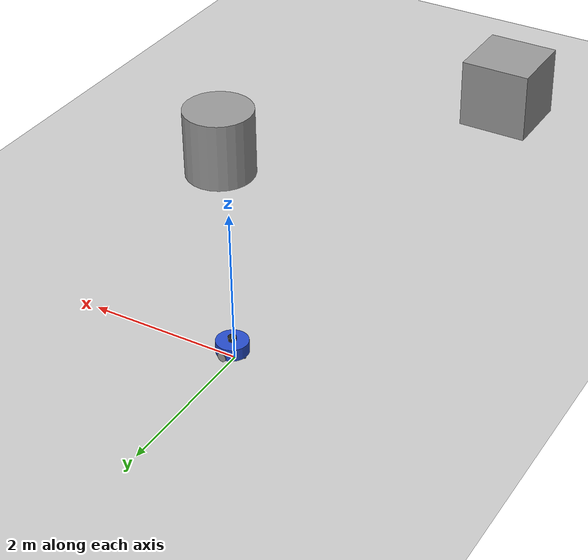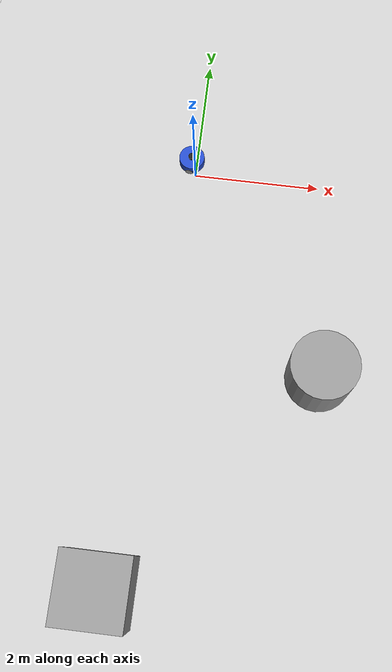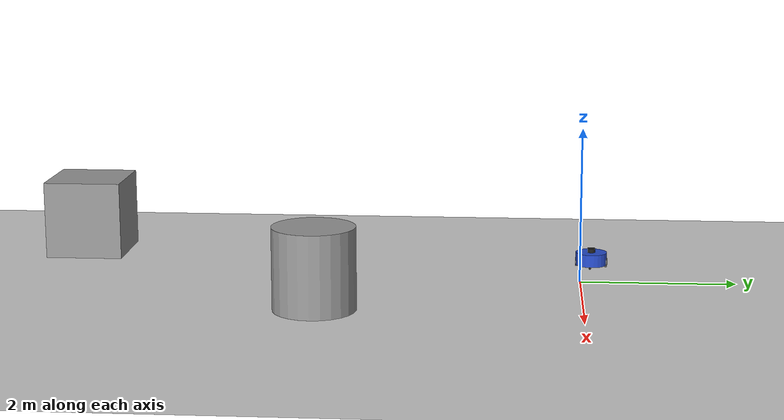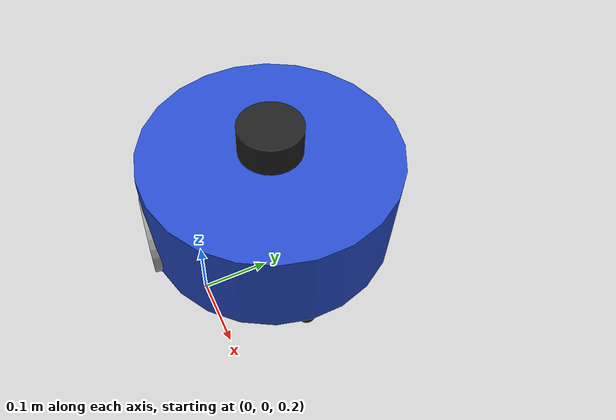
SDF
<sdf version="1.6">
 <world name="default">
  <light name="sun" type="directional">
   <pose>0 0 10 0 -0 0</pose>
   <diffuse>0.8 0.8 0.8 1</diffuse>
   <specular>0.1 0.1 0.1 1</specular>
   <attenuation>
    <range>1000</range>
    <constant>0.9</constant>
    <linear>0.01</linear>
    <quadratic>0.001</quadratic>
   </attenuation>
   <direction>-0.5 0.5 -1</direction>
  </light>
  <model name="ground_plane">
   <static>1</static>
   <link name="link">
    <collision name="collision">
     <geometry><plane><normal>0 0 1</normal><size>100 100</size></plane></geometry>
     <surface><friction><ode><mu>100</mu><mu2>50</mu2></ode></friction></surface>
    </collision>
    <visual name="visual">
     <cast_shadows>0</cast_shadows>
     <geometry><plane><normal>0 0 1</normal><size>100 100</size></plane></geometry>
     <material>
      <script><uri>file://media/materials/scripts/gazebo.material</uri><name>Gazebo/Grey</name></script>
     </material>
    </visual>
   </link>
  </model>
  <gravity>0 0 -9.8</gravity>
  <magnetic_field>6e-06 2.3e-05 -4.2e-05</magnetic_field>
  <atmosphere type="adiabatic"/>
  <physics name="default_physics" default="0" type="ode">
   <max_step_size>0.001</max_step_size>
   <real_time_factor>1</real_time_factor>
   <real_time_update_rate>1000</real_time_update_rate>
  </physics>
  <scene><ambient>0.4 0.4 0.4 1</ambient><background>0.7 0.7 0.7 1</background><shadows>1</shadows></scene>
  <spherical_coordinates>
   <surface_model>EARTH_WGS84</surface_model>
   <latitude_deg>0</latitude_deg>
   <longitude_deg>0</longitude_deg>
   <elevation>0</elevation>
   <heading_deg>0</heading_deg>
  </spherical_coordinates>
  <model name="mbot">
   <link name="base_footprint">
    <inertial>
     <pose>0 0 0.110522 0 -0 0</pose>
     <mass>20.1</mass>
     <inertia><ixx>0.253764</ixx><ixy>0</ixy><ixz>0</ixz><iyy>0.253764</iyy><iyz>0</iyz><izz>0.41</izz></inertia>
    </inertial>
    <collision name="base_footprint_fixed_joint_lump__base_link_collision">
     <pose>0 0 0.11 0 -0 0</pose>
     <geometry><cylinder><length>0.16</length><radius>0.2</radius></cylinder></geometry>
    </collision>
    <collision name="base_footprint_fixed_joint_lump__laser_link_collision_1">
     <pose>0 0 0.215 0 -0 0</pose>
     <geometry><cylinder><length>0.06</length><radius>0.05</radius></cylinder></geometry>
    </collision>
    <visual name="base_footprint_visual">
     <geometry><box><size>0.001 0.001 0.001</size></box></geometry>
     <material><script><uri>__default__</uri><name>__default__</name></script></material>
    </visual>
    <visual name="base_footprint_fixed_joint_lump__base_link_visual_1">
     <pose>0 0 0.11 0 -0 0</pose>
     <geometry><cylinder><length>0.16</length><radius>0.2</radius></cylinder></geometry>
     <material>
      <script><name>Gazebo/Blue</name><uri>file://media/materials/scripts/gazebo.material</uri></script>
     </material>
    </visual>
    <visual name="base_footprint_fixed_joint_lump__laser_link_visual_2">
     <pose>0 0 0.215 0 -0 0</pose>
     <geometry><cylinder><length>0.05</length><radius>0.05</radius></cylinder></geometry>
     <material>
      <script><name>Gazebo/Black</name><uri>file://media/materials/scripts/gazebo.material</uri></script>
     </material>
    </visual>
    <sensor name="rplidar" type="ray">
     <visualize>0</visualize>
     <update_rate>5.5</update_rate>
     <ray>
      <scan>
       <horizontal>
        <samples>360</samples>
        <resolution>1</resolution>
        <min_angle>-3</min_angle>
        <max_angle>3</max_angle>
       </horizontal>
       <vertical><samples>1</samples><min_angle>0</min_angle><max_angle>0</max_angle></vertical>
      </scan>
      <range><min>0.1</min><max>6</max><resolution>0.01</resolution></range>
      <noise><type>gaussian</type><mean>0</mean><stddev>0.01</stddev></noise>
     </ray>
     <plugin name="gazebo_rplidar" filename="libgazebo_ros_laser.so">
      <topicName>/scan</topicName>
      <frameName>laser_link</frameName>
      <robotNamespace>/</robotNamespace>
     </plugin>
     <pose>0 0 0.215 0 -0 0</pose>
    </sensor>
   </link>
   <link name="back_caster_link">
    <pose>0.18 0 0.015 0 -0 0</pose>
    <inertial>
     <mass>0.5</mass>
     <inertia><ixx>4.5e-05</ixx><ixy>0</ixy><ixz>0</ixz><iyy>4.5e-05</iyy><iyz>0</iyz><izz>4.5e-05</izz></inertia>
    </inertial>
    <collision name="back_caster_link_collision">
     <geometry><sphere><radius>0.015</radius></sphere></geometry>
    </collision>
    <visual name="back_caster_link_visual">
     <geometry><sphere><radius>0.015</radius></sphere></geometry>
     <material>
      <script><name>Gazebo/Black</name><uri>file://media/materials/scripts/gazebo.material</uri></script>
     </material>
    </visual>
   </link>
   <joint name="back_caster_joint" type="revolute">
    <child>back_caster_link</child>
    <parent>base_footprint</parent>
    <axis>
     <xyz>0 1 0</xyz>
     <limit><lower>-1e+16</lower><upper>1e+16</upper></limit>
     <dynamics><spring_reference>0</spring_reference><spring_stiffness>0</spring_stiffness></dynamics>
     <use_parent_model_frame>1</use_parent_model_frame>
    </axis>
   </joint>
   <link name="front_caster_link">
    <pose>-0.18 0 0.015 0 -0 0</pose>
    <inertial>
     <mass>0.5</mass>
     <inertia><ixx>4.5e-05</ixx><ixy>0</ixy><ixz>0</ixz><iyy>4.5e-05</iyy><iyz>0</iyz><izz>4.5e-05</izz></inertia>
    </inertial>
    <collision name="front_caster_link_collision">
     <geometry><sphere><radius>0.015</radius></sphere></geometry>
    </collision>
    <visual name="front_caster_link_visual">
     <geometry><sphere><radius>0.015</radius></sphere></geometry>
     <material>
      <script><name>Gazebo/Black</name><uri>file://media/materials/scripts/gazebo.material</uri></script>
     </material>
    </visual>
   </link>
   <joint name="front_caster_joint" type="revolute">
    <child>front_caster_link</child>
    <parent>base_footprint</parent>
    <axis>
     <xyz>0 1 0</xyz>
     <limit><lower>-1e+16</lower><upper>1e+16</upper></limit>
     <dynamics><spring_reference>0</spring_reference><spring_stiffness>0</spring_stiffness></dynamics>
     <use_parent_model_frame>1</use_parent_model_frame>
    </axis>
   </joint>
   <link name="left_wheel_link">
    <pose>0 -0.19 0.06 0 -0 0</pose>
    <inertial>
     <mass>2</mass>
     <inertia>
      <ixx>0.00190417</ixx>
      <ixy>0</ixy>
      <ixz>0</ixz>
      <iyy>0.00190417</iyy>
      <iyz>0</iyz>
      <izz>0.0036</izz>
     </inertia>
    </inertial>
    <collision name="left_wheel_link_collision">
     <pose>0 0 0 1.5708 -0 0</pose>
     <geometry><cylinder><length>0.025</length><radius>0.06</radius></cylinder></geometry>
    </collision>
    <visual name="left_wheel_link_visual">
     <pose>0 0 0 1.5708 -0 0</pose>
     <geometry><cylinder><length>0.025</length><radius>0.06</radius></cylinder></geometry>
     <material>
      <script><name>Gazebo/Gray</name><uri>file://media/materials/scripts/gazebo.material</uri></script>
     </material>
    </visual>
   </link>
   <joint name="left_wheel_joint" type="revolute">
    <child>left_wheel_link</child>
    <parent>base_footprint</parent>
    <axis>
     <xyz>0 1 0</xyz>
     <limit><lower>-1e+16</lower><upper>1e+16</upper></limit>
     <dynamics><spring_reference>0</spring_reference><spring_stiffness>0</spring_stiffness></dynamics>
     <use_parent_model_frame>1</use_parent_model_frame>
    </axis>
   </joint>
   <link name="right_wheel_link">
    <pose>0 0.19 0.06 0 -0 0</pose>
    <inertial>
     <mass>2</mass>
     <inertia>
      <ixx>0.00190417</ixx>
      <ixy>0</ixy>
      <ixz>0</ixz>
      <iyy>0.00190417</iyy>
      <iyz>0</iyz>
      <izz>0.0036</izz>
     </inertia>
    </inertial>
    <collision name="right_wheel_link_collision">
     <pose>0 0 0 1.5708 -0 0</pose>
     <geometry><cylinder><length>0.025</length><radius>0.06</radius></cylinder></geometry>
    </collision>
    <visual name="right_wheel_link_visual">
     <pose>0 0 0 1.5708 -0 0</pose>
     <geometry><cylinder><length>0.025</length><radius>0.06</radius></cylinder></geometry>
     <material>
      <script><name>Gazebo/Gray</name><uri>file://media/materials/scripts/gazebo.material</uri></script>
     </material>
    </visual>
   </link>
   <joint name="right_wheel_joint" type="revolute">
    <child>right_wheel_link</child>
    <parent>base_footprint</parent>
    <axis>
     <xyz>0 1 0</xyz>
     <limit><lower>-1e+16</lower><upper>1e+16</upper></limit>
     <dynamics><spring_reference>0</spring_reference><spring_stiffness>0</spring_stiffness></dynamics>
     <use_parent_model_frame>1</use_parent_model_frame>
    </axis>
   </joint>
   <static>0</static>
   <plugin name="differential_drive_controller" filename="libgazebo_ros_diff_drive.so">
    <rosDebugLevel>Debug</rosDebugLevel>
    <publishWheelTF>true</publishWheelTF>
    <robotNamespace>/</robotNamespace>
    <publishTf>1</publishTf>
    <publishWheelJointState>true</publishWheelJointState>
    <alwaysOn>true</alwaysOn>
    <updateRate>100.0</updateRate>
    <legacyMode>true</legacyMode>
    <leftJoint>left_wheel_joint</leftJoint>
    <rightJoint>right_wheel_joint</rightJoint>
    <wheelSeparation>0.38</wheelSeparation>
    <wheelDiameter>0.12</wheelDiameter>
    <broadcastTF>1</broadcastTF>
    <wheelTorque>30</wheelTorque>
    <wheelAcceleration>1.8</wheelAcceleration>
    <commandTopic>cmd_vel</commandTopic>
    <odometryFrame>odom</odometryFrame>
    <odometryTopic>odom</odometryTopic>
    <robotBaseFrame>base_footprint</robotBaseFrame>
   </plugin>
   <pose>-0.070305 0.141694 0.189796 2.1e-05 -0 -0.121554</pose>
  </model>
  <model name="unit_box_0">
   <pose>-0.538336 -6.52854 0.6898 0 -0 0</pose>
   <link name="link">
    <inertial>
     <mass>1</mass>
     <inertia>
      <ixx>0.166667</ixx>
      <ixy>0</ixy>
      <ixz>0</ixz>
      <iyy>0.166667</iyy>
      <iyz>0</iyz>
      <izz>0.166667</izz>
     </inertia>
    </inertial>
    <collision name="collision"><geometry><box><size>1 1 1</size></box></geometry></collision>
    <visual name="visual">
     <geometry><box><size>1 1 1</size></box></geometry>
     <material>
      <script><name>Gazebo/Grey</name><uri>file://media/materials/scripts/gazebo.material</uri></script>
     </material>
    </visual>
   </link>
  </model>
  <model name="unit_cylinder_0">
   <pose>2.2456 -3.18081 0.68979 1e-06 -0 1.2e-05</pose>
   <link name="link">
    <inertial>
     <mass>1</mass>
     <inertia><ixx>0.145833</ixx><ixy>0</ixy><ixz>0</ixz><iyy>0.145833</iyy><iyz>0</iyz><izz>0.125</izz></inertia>
    </inertial>
    <collision name="collision">
     <geometry><cylinder><radius>0.5</radius><length>1</length></cylinder></geometry>
    </collision>
    <visual name="visual">
     <geometry><cylinder><radius>0.5</radius><length>1</length></cylinder></geometry>
     <material>
      <script><name>Gazebo/Grey</name><uri>file://media/materials/scripts/gazebo.material</uri></script>
     </material>
    </visual>
   </link>
  </model>
 </world>
</sdf>
